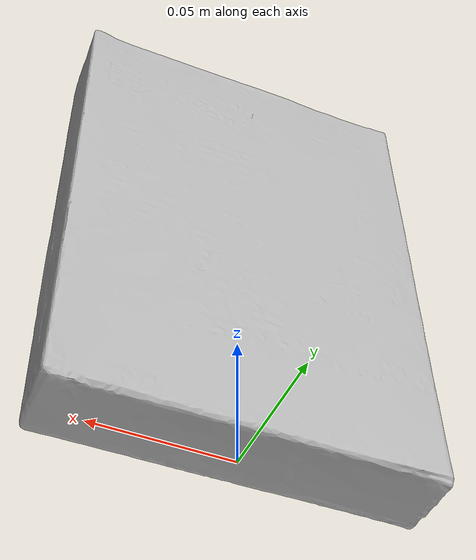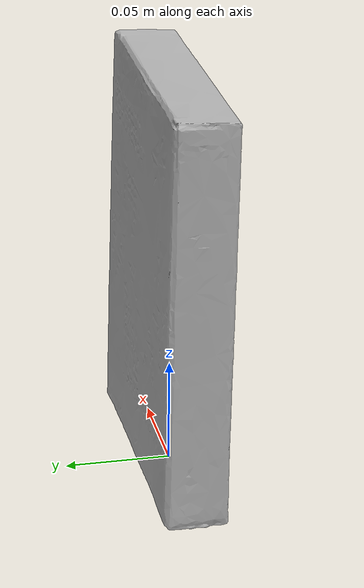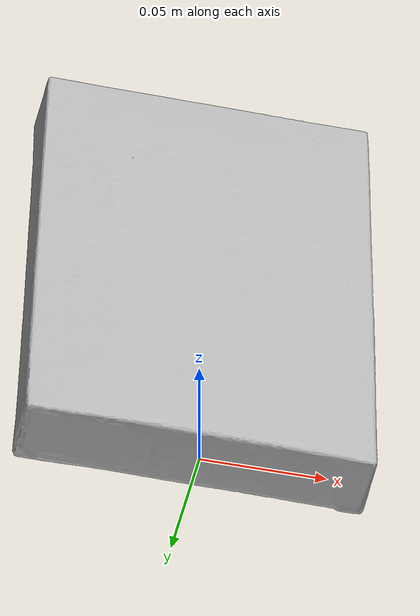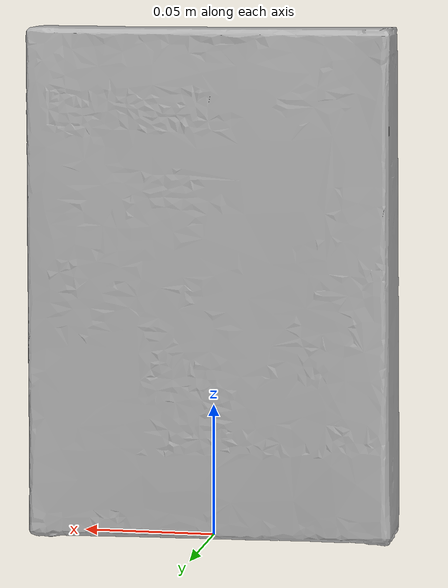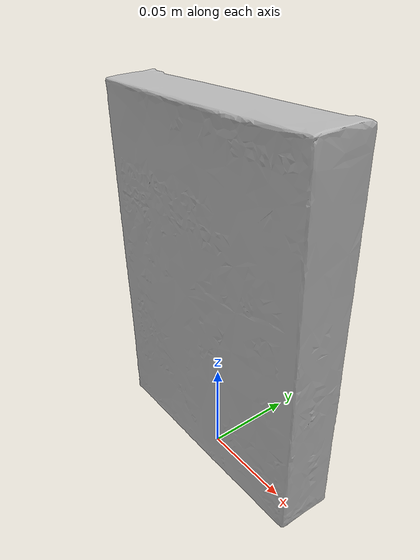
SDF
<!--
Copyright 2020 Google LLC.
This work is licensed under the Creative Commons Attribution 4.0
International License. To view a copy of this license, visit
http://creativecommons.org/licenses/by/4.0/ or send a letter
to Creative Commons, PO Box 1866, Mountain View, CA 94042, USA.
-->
<?xml version="1.0" ?>
<sdf version="1.6">
  <model name="Sony_Downloadable_Loops">
    <link name="link_0">
      <visual name="visual">
        <geometry>
          <mesh>
            <uri>meshes/model.obj</uri>
          </mesh>
        </geometry>
      </visual>
      <collision name="collision_0">
        <geometry>
          <mesh>
            <uri>meshes/model.obj</uri>
          </mesh>
        </geometry>
      </collision>
    </link>
  </model>
</sdf>
